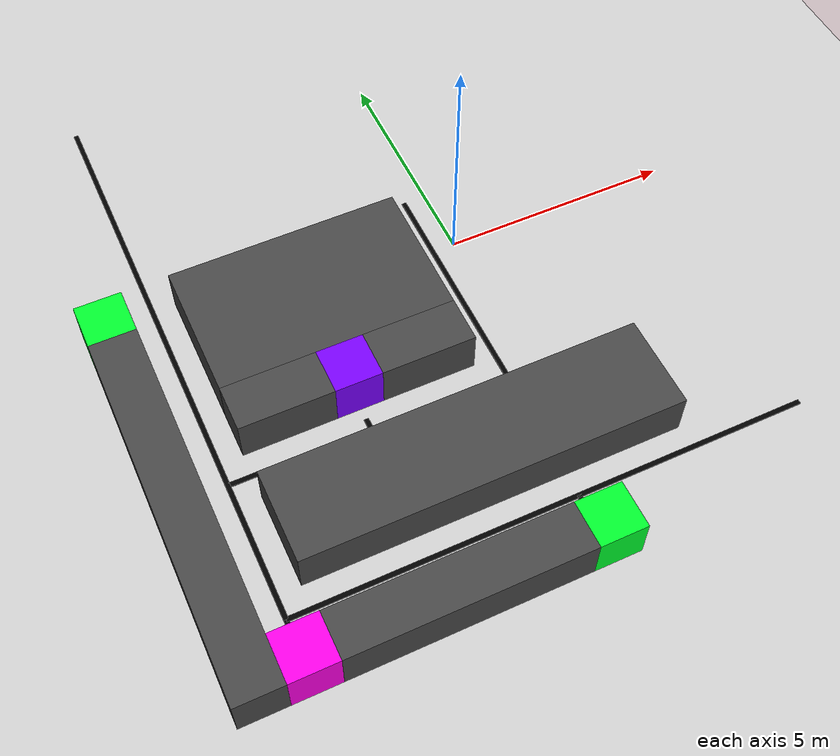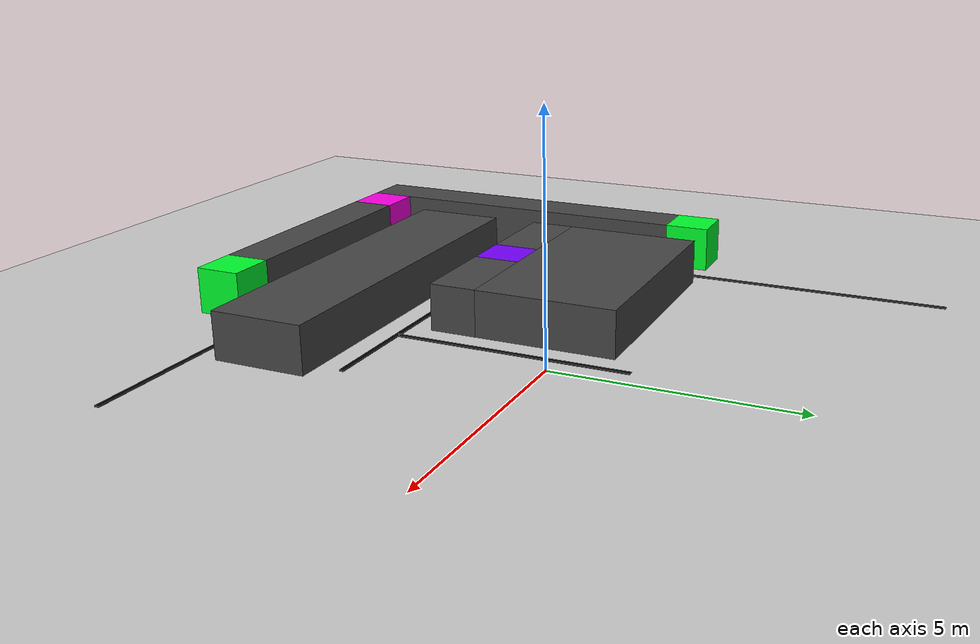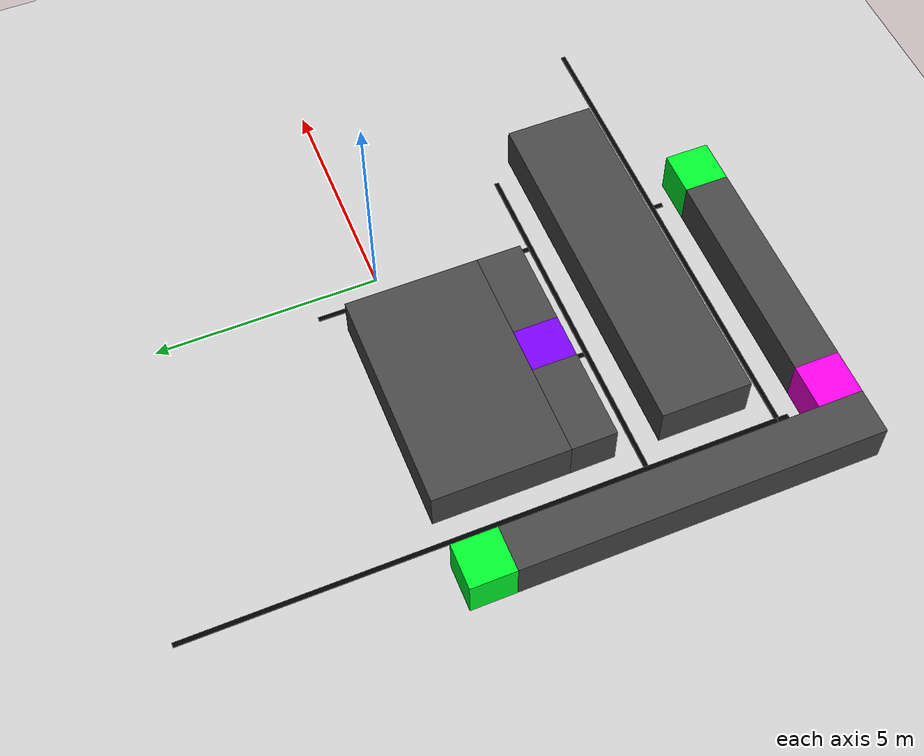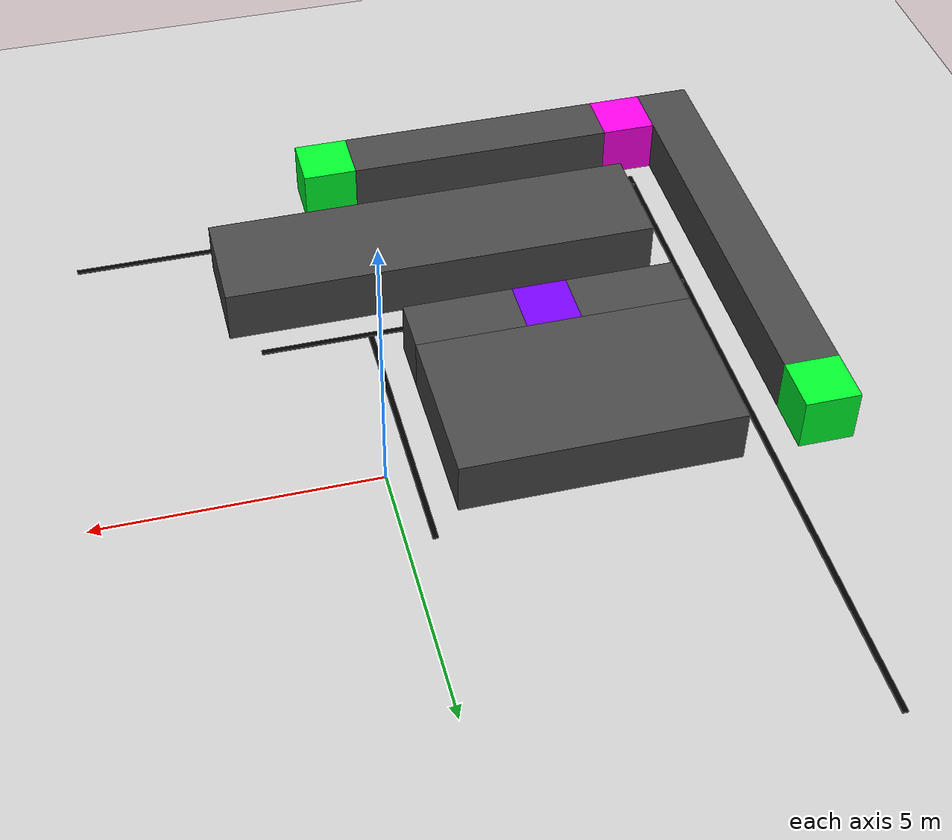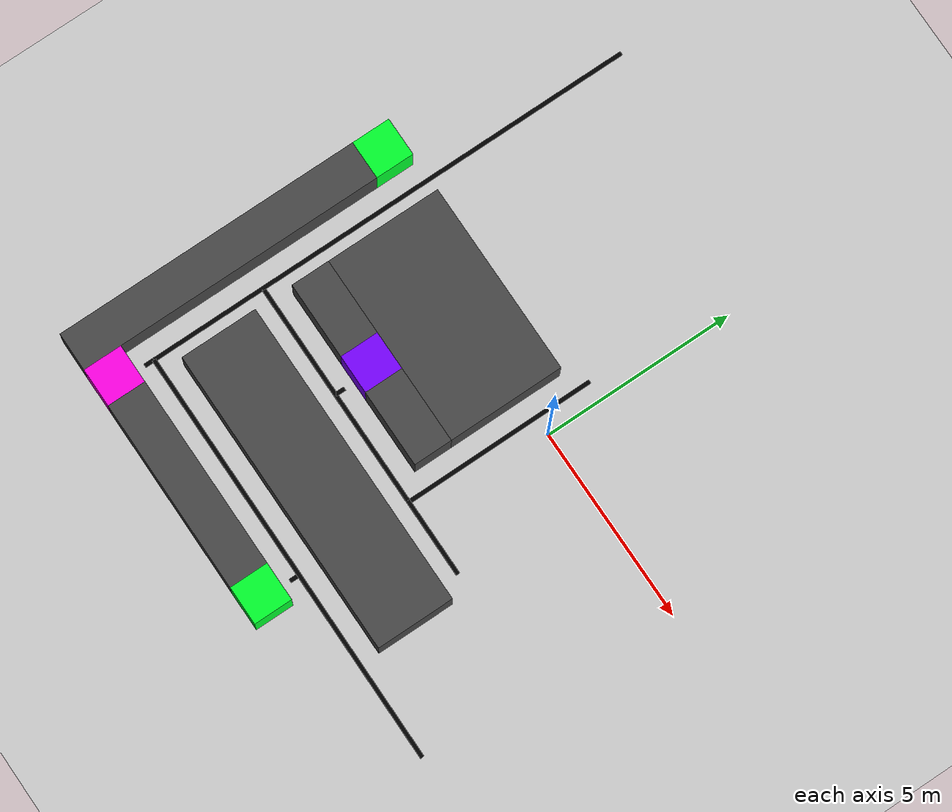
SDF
<sdf version="1.10">
 <world name="empty">
  <model name="ground_plane">
   <static>true</static>
   <link name="link">
    <collision name="collision">
     <geometry><plane><normal>0 0 1</normal><size>100 100</size></plane></geometry>
    </collision>
    <visual name="visual">
     <geometry><plane><normal>0 0 1</normal><size>100 100</size></plane></geometry>
     <material>
      <ambient>0.800000012 0.800000012 0.800000012 1</ambient>
      <diffuse>0.800000012 0.800000012 0.800000012 1</diffuse>
      <specular>0.800000012 0.800000012 0.800000012 1</specular>
     </material>
    </visual>
    <inertial>
     <mass>1</mass>
     <inertia><ixx>1</ixx><ixy>0</ixy><ixz>0</ixz><iyy>1</iyy><iyz>0</iyz><izz>1</izz></inertia>
    </inertial>
   </link>
  </model>
  <model name="CHARGER_0">
   <pose>-7.5 0.5 0.5 4.6034300000045669e-07 4.6038700000045806e-07 6.6837400000066823e-10</pose>
   <link name="box_link">
    <inertial>
     <inertia><ixx>0.16666</ixx><ixy>0</ixy><ixz>0</ixz><iyy>0.16666</iyy><iyz>0</iyz><izz>0.16666</izz></inertia>
     <mass>1</mass>
    </inertial>
    <collision name="box_collision"><geometry><box><size>1 1 1</size></box></geometry></collision>
    <visual name="box_visual">
     <geometry><box><size>1 1 1</size></box></geometry>
     <material>
      <ambient>0.300000012 0.300000012 0.300000012 1</ambient>
      <diffuse>0 1 0.175999999 1</diffuse>
      <specular>1 1 1 1</specular>
     </material>
    </visual>
   </link>
   <static>true</static>
  </model>
  <model name="box_2">
   <pose>-7.5 -4 0.5 4.6034300000045669e-07 4.6038700000045806e-07 6.6837400000066823e-10</pose>
   <link name="box_link">
    <inertial>
     <inertia><ixx>0.16666</ixx><ixy>0</ixy><ixz>0</ixz><iyy>0.16666</iyy><iyz>0</iyz><izz>0.16666</izz></inertia>
     <mass>1</mass>
    </inertial>
    <collision name="box_collision"><geometry><box><size>1 8 1</size></box></geometry></collision>
    <visual name="box_visual">
     <geometry><box><size>1 8 1</size></box></geometry>
     <material>
      <ambient>0.300000012 0.300000012 0.300000012 1</ambient>
      <diffuse>0.277999997 0.277999997 0.277999997 1</diffuse>
      <specular>1 1 1 1</specular>
     </material>
    </visual>
   </link>
   <static>true</static>
  </model>
  <model name="CHARGER_2">
   <pose>-0.5 -7.5 0.5 0 0 0</pose>
   <link name="box_link">
    <inertial>
     <inertia><ixx>0.16666</ixx><ixy>0</ixy><ixz>0</ixz><iyy>0.16666</iyy><iyz>0</iyz><izz>0.16666</izz></inertia>
     <mass>1</mass>
    </inertial>
    <collision name="box_collision"><geometry><box><size>1 1 1</size></box></geometry></collision>
    <visual name="box_visual">
     <geometry><box><size>1 1 1</size></box></geometry>
     <material>
      <ambient>0.300000012 0.300000012 0.300000012 1</ambient>
      <diffuse>0 1 0.175999999 1</diffuse>
      <specular>1 1 1 1</specular>
     </material>
    </visual>
   </link>
   <static>true</static>
  </model>
  <model name="box_14">
   <pose>-3.5 -7.5 0.5 0 0 0</pose>
   <link name="box_link">
    <inertial>
     <inertia><ixx>0.16666</ixx><ixy>0</ixy><ixz>0</ixz><iyy>0.16666</iyy><iyz>0</iyz><izz>0.16666</izz></inertia>
     <mass>1</mass>
    </inertial>
    <collision name="box_collision"><geometry><box><size>5 1 1</size></box></geometry></collision>
    <visual name="box_visual">
     <geometry><box><size>5 1 1</size></box></geometry>
     <material>
      <ambient>0.300000012 0.300000012 0.300000012 1</ambient>
      <diffuse>0.277999997 0.277999997 0.277999997 1</diffuse>
      <specular>1 1 1 1</specular>
     </material>
    </visual>
   </link>
   <static>true</static>
  </model>
  <model name="HOUSE_7">
   <pose>-6.5 -7.5 0.5 0 0 0</pose>
   <link name="box_link">
    <inertial>
     <inertia><ixx>0.16666</ixx><ixy>0</ixy><ixz>0</ixz><iyy>0.16666</iyy><iyz>0</iyz><izz>0.16666</izz></inertia>
     <mass>1</mass>
    </inertial>
    <collision name="box_collision"><geometry><box><size>1 1 1</size></box></geometry></collision>
    <visual name="box_visual">
     <geometry><box><size>1 1 1</size></box></geometry>
     <material>
      <ambient>0.300000012 0.300000012 0.300000012 1</ambient>
      <diffuse>1 0 0.898000002 1</diffuse>
      <specular>1 1 1 1</specular>
     </material>
    </visual>
   </link>
   <static>true</static>
  </model>
  <model name="box_29">
   <pose>-3.5 -0.5 0.5 0 0 0</pose>
   <link name="box_link">
    <inertial>
     <inertia><ixx>0.16666</ixx><ixy>0</ixy><ixz>0</ixz><iyy>0.16666</iyy><iyz>0</iyz><izz>0.16666</izz></inertia>
     <mass>1</mass>
    </inertial>
    <collision name="box_collision"><geometry><box><size>5 3 1</size></box></geometry></collision>
    <visual name="box_visual">
     <geometry><box><size>5 3 1</size></box></geometry>
     <material>
      <ambient>0.300000012 0.300000012 0.300000012 1</ambient>
      <diffuse>0.277999997 0.277999997 0.277999997 1</diffuse>
      <specular>1 1 1 1</specular>
     </material>
    </visual>
   </link>
   <static>true</static>
  </model>
  <model name="box_30">
   <pose>-5 -2.5 0.5 0 0 0</pose>
   <link name="box_link">
    <inertial>
     <inertia><ixx>0.16666</ixx><ixy>0</ixy><ixz>0</ixz><iyy>0.16666</iyy><iyz>0</iyz><izz>0.16666</izz></inertia>
     <mass>1</mass>
    </inertial>
    <collision name="box_collision"><geometry><box><size>2 1 1</size></box></geometry></collision>
    <visual name="box_visual">
     <geometry><box><size>2 1 1</size></box></geometry>
     <material>
      <ambient>0.300000012 0.300000012 0.300000012 1</ambient>
      <diffuse>0.277999997 0.277999997 0.277999997 1</diffuse>
      <specular>1 1 1 1</specular>
     </material>
    </visual>
   </link>
   <static>true</static>
  </model>
  <model name="HOUSE_8">
   <pose>-3.5 -2.5 0.5 0 0 0</pose>
   <link name="box_link">
    <inertial>
     <inertia><ixx>0.16666</ixx><ixy>0</ixy><ixz>0</ixz><iyy>0.16666</iyy><iyz>0</iyz><izz>0.16666</izz></inertia>
     <mass>1</mass>
    </inertial>
    <collision name="box_collision"><geometry><box><size>1 1 1</size></box></geometry></collision>
    <visual name="box_visual">
     <geometry><box><size>1 1 1</size></box></geometry>
     <material>
      <ambient>0.300000012 0.300000012 0.300000012 1</ambient>
      <diffuse>0.470999986 0 1 1</diffuse>
      <specular>1 1 1 1</specular>
     </material>
    </visual>
   </link>
   <static>true</static>
  </model>
  <model name="box_32">
   <pose>-2 -2.5 0.5 0 0 0</pose>
   <link name="box_link">
    <inertial>
     <inertia><ixx>0.16666</ixx><ixy>0</ixy><ixz>0</ixz><iyy>0.16666</iyy><iyz>0</iyz><izz>0.16666</izz></inertia>
     <mass>1</mass>
    </inertial>
    <collision name="box_collision"><geometry><box><size>2 1 1</size></box></geometry></collision>
    <visual name="box_visual">
     <geometry><box><size>2 1 1</size></box></geometry>
     <material>
      <ambient>0.300000012 0.300000012 0.300000012 1</ambient>
      <diffuse>0.277999997 0.277999997 0.277999997 1</diffuse>
      <specular>1 1 1 1</specular>
     </material>
    </visual>
   </link>
   <static>true</static>
  </model>
  <model name="box_38">
   <pose>-2 -5 0.5 0 0 0</pose>
   <link name="box_link">
    <inertial>
     <inertia><ixx>0.16666</ixx><ixy>0</ixy><ixz>0</ixz><iyy>0.16666</iyy><iyz>0</iyz><izz>0.16666</izz></inertia>
     <mass>1</mass>
    </inertial>
    <collision name="box_collision"><geometry><box><size>8 2 1</size></box></geometry></collision>
    <visual name="box_visual">
     <geometry><box><size>8 2 1</size></box></geometry>
     <material>
      <ambient>0.300000012 0.300000012 0.300000012 1</ambient>
      <diffuse>0.277999997 0.277999997 0.277999997 1</diffuse>
      <specular>1 1 1 1</specular>
     </material>
    </visual>
   </link>
   <static>true</static>
  </model>
  <model name="line_0">
   <pose>-6.5 0 0 0 0 0</pose>
   <link name="box_link">
    <inertial>
     <inertia><ixx>0.16666</ixx><ixy>0</ixy><ixz>0</ixz><iyy>0.16666</iyy><iyz>0</iyz><izz>0.16666</izz></inertia>
     <mass>1</mass>
    </inertial>
    <collision name="box_collision">
     <geometry><box><size>0.10000000000000001 13 0.025000000000000001</size></box></geometry>
    </collision>
    <visual name="box_visual">
     <geometry><box><size>0.10000000000000001 13 0.025000000000000001</size></box></geometry>
     <material>
      <ambient>0.300000012 0.300000012 0.300000012 1</ambient>
      <diffuse>0 0 0 1</diffuse>
      <specular>1 1 1 1</specular>
     </material>
    </visual>
   </link>
   <static>true</static>
  </model>
  <model name="line_1">
   <pose>-1 -6.5 0 0 0 0</pose>
   <link name="box_link">
    <inertial>
     <inertia><ixx>0.16666</ixx><ixy>0</ixy><ixz>0</ixz><iyy>0.16666</iyy><iyz>0</iyz><izz>0.16666</izz></inertia>
     <mass>1</mass>
    </inertial>
    <collision name="box_collision">
     <geometry><box><size>11 0.10000000000000001 0.025000000000000001</size></box></geometry>
    </collision>
    <visual name="box_visual">
     <geometry><box><size>11 0.10000000000000001 0.025000000000000001</size></box></geometry>
     <material>
      <ambient>0.300000012 0.300000012 0.300000012 1</ambient>
      <diffuse>0 0 0 1</diffuse>
      <specular>1 1 1 1</specular>
     </material>
    </visual>
   </link>
   <static>true</static>
  </model>
  <model name="line_4">
   <pose>-2.5 -3.5 0 0 0 0</pose>
   <link name="box_link">
    <inertial>
     <inertia><ixx>0.16666</ixx><ixy>0</ixy><ixz>0</ixz><iyy>0.16666</iyy><iyz>0</iyz><izz>0.16666</izz></inertia>
     <mass>1</mass>
    </inertial>
    <collision name="box_collision">
     <geometry><box><size>8 0.10000000000000001 0.025000000000000001</size></box></geometry>
    </collision>
    <visual name="box_visual">
     <geometry><box><size>8 0.10000000000000001 0.025000000000000001</size></box></geometry>
     <material>
      <ambient>0.300000012 0.300000012 0.300000012 1</ambient>
      <diffuse>0 0 0 1</diffuse>
      <specular>1 1 1 1</specular>
     </material>
    </visual>
   </link>
   <static>true</static>
  </model>
  <model name="line_5">
   <pose>-0.5 -1 0 0 0 0</pose>
   <link name="box_link">
    <inertial>
     <inertia><ixx>0.16666</ixx><ixy>0</ixy><ixz>0</ixz><iyy>0.16666</iyy><iyz>0</iyz><izz>0.16666</izz></inertia>
     <mass>1</mass>
    </inertial>
    <collision name="box_collision">
     <geometry><box><size>0.10000000000000001 5 0.025000000000000001</size></box></geometry>
    </collision>
    <visual name="box_visual">
     <geometry><box><size>0.10000000000000001 5 0.025000000000000001</size></box></geometry>
     <material>
      <ambient>0.300000012 0.300000012 0.300000012 1</ambient>
      <diffuse>0 0 0 1</diffuse>
      <specular>1 1 1 1</specular>
     </material>
    </visual>
   </link>
   <static>true</static>
  </model>
  <model name="in_line_H8">
   <pose>-3.5 -3.375 0 0 0 0</pose>
   <link name="box_link">
    <inertial>
     <inertia><ixx>0.16666</ixx><ixy>0</ixy><ixz>0</ixz><iyy>0.16666</iyy><iyz>0</iyz><izz>0.16666</izz></inertia>
     <mass>1</mass>
    </inertial>
    <collision name="box_collision">
     <geometry><box><size>0.10000000000000001 0.25 0.025000000000000001</size></box></geometry>
    </collision>
    <visual name="box_visual">
     <geometry><box><size>0.10000000000000001 0.25 0.025000000000000001</size></box></geometry>
     <material>
      <ambient>0.300000012 0.300000012 0.300000012 1</ambient>
      <diffuse>0 0 0 1</diffuse>
      <specular>1 1 1 1</specular>
     </material>
    </visual>
   </link>
   <static>true</static>
  </model>
  <model name="in_line_C2">
   <pose>-0.5 -6.625 0 0 0 0</pose>
   <link name="box_link">
    <inertial>
     <inertia><ixx>0.16666</ixx><ixy>0</ixy><ixz>0</ixz><iyy>0.16666</iyy><iyz>0</iyz><izz>0.16666</izz></inertia>
     <mass>1</mass>
    </inertial>
    <collision name="box_collision">
     <geometry><box><size>0.10000000000000001 0.25 0.025000000000000001</size></box></geometry>
    </collision>
    <visual name="box_visual">
     <geometry><box><size>0.10000000000000001 0.25 0.025000000000000001</size></box></geometry>
     <material>
      <ambient>0.300000012 0.300000012 0.300000012 1</ambient>
      <diffuse>0 0 0 1</diffuse>
      <specular>1 1 1 1</specular>
     </material>
    </visual>
   </link>
   <static>true</static>
  </model>
  <model name="in_line_H7">
   <pose>-6.5 -6.625 0 0 0 0</pose>
   <link name="box_link">
    <inertial>
     <inertia><ixx>0.16666</ixx><ixy>0</ixy><ixz>0</ixz><iyy>0.16666</iyy><iyz>0</iyz><izz>0.16666</izz></inertia>
     <mass>1</mass>
    </inertial>
    <collision name="box_collision">
     <geometry><box><size>0.10000000000000001 0.25 0.025000000000000001</size></box></geometry>
    </collision>
    <visual name="box_visual">
     <geometry><box><size>0.10000000000000001 0.25 0.025000000000000001</size></box></geometry>
     <material>
      <ambient>0.300000012 0.300000012 0.300000012 1</ambient>
      <diffuse>0 0 0 1</diffuse>
      <specular>1 1 1 1</specular>
     </material>
    </visual>
   </link>
   <static>true</static>
  </model>
 </world>
</sdf>
